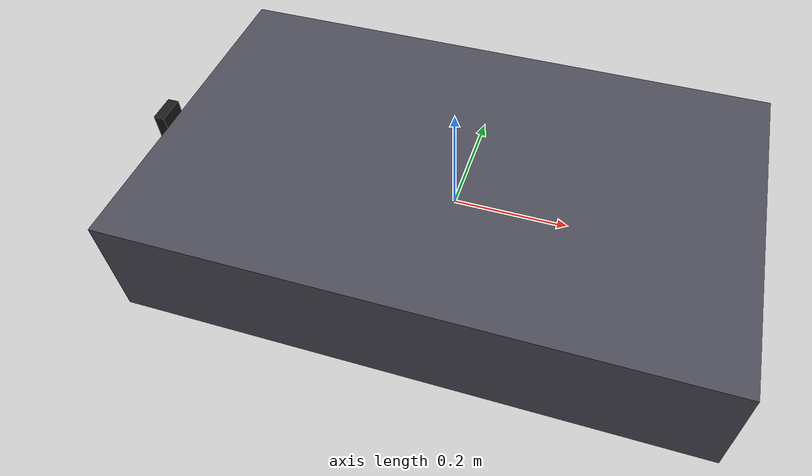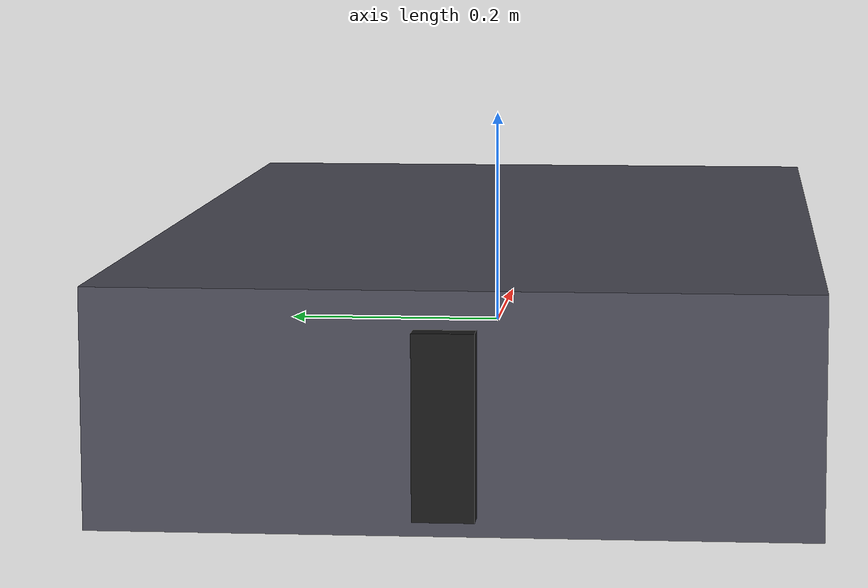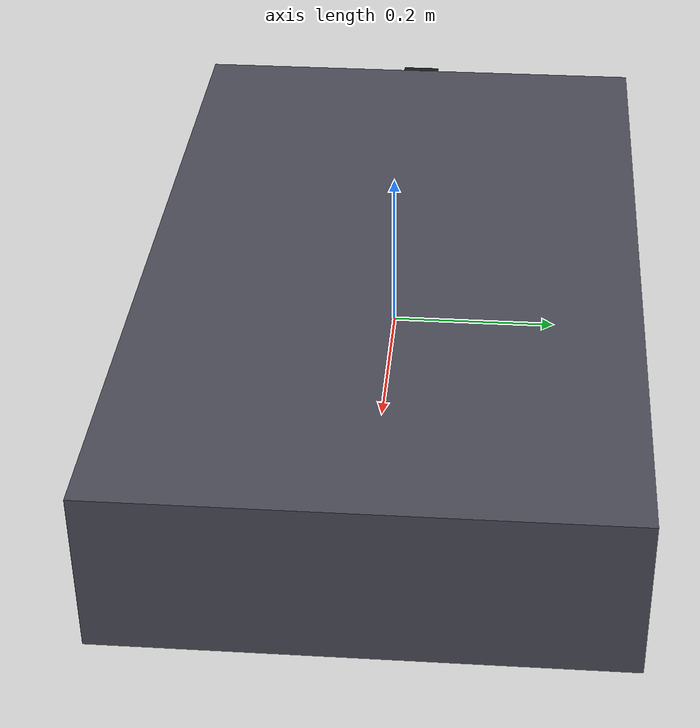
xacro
<?xml version="1.0"?>
<robot xmlns:xacro="http://wiki.ros.org/xacro" name="loone_asv">

  <!-- ============================ Tunable geometry ============================ -->
  <!-- TODO(team): measure the real boat. These are placeholders just so RViz shows
       roughly the right shape; only the joint axes matter for control. -->
  <xacro:property name="hull_length" value="1.0"/>
  <xacro:property name="hull_width"  value="0.6"/>
  <xacro:property name="hull_height" value="0.2"/>
  <xacro:property name="prop_x"      value="-0.45"/> <!-- props near the stern -->
  <xacro:property name="prop_y"      value="0.25"/>  <!-- half the thruster separation -->
  <xacro:property name="rudder_x"    value="-0.55"/> <!-- rudder behind the props -->

  <material name="hull_grey"><color rgba="0.3 0.3 0.35 1.0"/></material>
  <material name="prop_dark"><color rgba="0.1 0.1 0.1 1.0"/></material>

  <!-- ============================ Links ============================ -->
  <!-- base_link: the robot base frame nav2 plans for. Origin ~ boat center. -->
  <link name="base_link">
    <visual>
      <geometry><box size="${hull_length} ${hull_width} ${hull_height}"/></geometry>
      <material name="hull_grey"/>
    </visual>
    <collision>
      <geometry><box size="${hull_length} ${hull_width} ${hull_height}"/></geometry>
    </collision>
    <!-- Minimal inertial so URDF tools don't warn; not used without a physics sim. -->
    <inertial>
      <mass value="10.0"/>
      <inertia ixx="0.5" ixy="0.0" ixz="0.0" iyy="1.0" iyz="0.0" izz="1.0"/>
    </inertial>
  </link>

  <!-- Simple placeholder links for the two thrusters and the rudder. -->
  <link name="prop_l_link"><visual><geometry><cylinder radius="0.05" length="0.08"/></geometry><material name="prop_dark"/></visual></link>
  <link name="prop_r_link"><visual><geometry><cylinder radius="0.05" length="0.08"/></geometry><material name="prop_dark"/></visual></link>
  <link name="rudder_link"><visual><geometry><box size="0.02 0.05 0.15"/></geometry><material name="prop_dark"/></visual></link>

  <!-- ============================ Joints ============================ -->
  <joint name="prop_l_joint" type="continuous">
    <parent link="base_link"/>
    <child link="prop_l_link"/>
    <origin xyz="${prop_x} ${prop_y} 0" rpy="0 1.5708 0"/>
    <axis xyz="0 0 1"/>
  </joint>

  <joint name="prop_r_joint" type="continuous">
    <parent link="base_link"/>
    <child link="prop_r_link"/>
    <origin xyz="${prop_x} ${-prop_y} 0" rpy="0 1.5708 0"/>
    <axis xyz="0 0 1"/>
  </joint>

  <!-- Rudder deflects left/right about the vertical axis. `revolute` with generous
       limits; the numeric command is a normalized [0,1] fraction (0.55 ~ straight). -->
  <joint name="rudder_joint" type="revolute">
    <parent link="base_link"/>
    <child link="rudder_link"/>
    <origin xyz="${rudder_x} 0 0" rpy="0 0 0"/>
    <axis xyz="0 0 1"/>
    <limit lower="-0.6" upper="0.6" effort="5.0" velocity="3.0"/>
  </joint>

  <!-- ============================ ros2_control ============================ -->
  <ros2_control name="asv" type="system">
    <hardware>
      <plugin>topic_based_ros2_control/TopicBasedSystem</plugin>
      <param name="joint_commands_topic">/asv/joint_commands</param>
      <param name="joint_states_topic">/asv/joint_states</param>
    </hardware>

    <joint name="prop_l_joint">
      <command_interface name="position"/>
      <state_interface name="position"/>
    </joint>
    <joint name="prop_r_joint">
      <command_interface name="position"/>
      <state_interface name="position"/>
    </joint>
    <joint name="rudder_joint">
      <command_interface name="position"/>
      <state_interface name="position"/>
    </joint>
  </ros2_control>

</robot>
